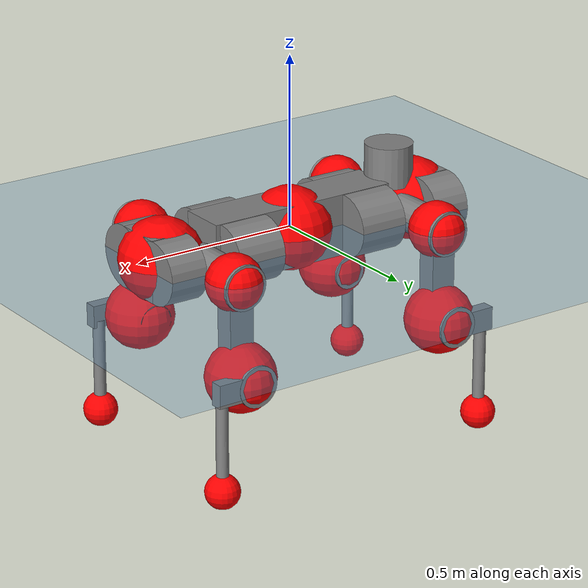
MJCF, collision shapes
<mujoco model="anymal_c">
  <compiler angle="radian" assetdir="assets" balanceinertia="true" inertiafromgeom="false"/>

  <option timestep="0.005" density="1.2" viscosity="2e-05"/>

  <size nkey="1"/>

  <visual>
    <quality shadowsize="8192"/>
    <map shadowclip="0.5"/>
  </visual>

  <default>
    <default class="/">
      <material specular="0" shininess="0.25"/>
      <geom contype="0" conaffinity="0" group="1" solref="-1000 -80"/>
      <site size="0.01 0.005 0.005" group="5"/>
      <general forcelimited="true" forcerange="-80 80" biastype="affine" gainprm="80" biasprm="0 -80 -2"/>
      <default class="anymal_c">
        <joint armature="0.01" damping="0.01" frictionloss="0.1"/>
        <default class="visual">
          <geom type="mesh" group="2"/>
          <default class="visual_zflip"/>
        </default>
        <default class="collision">
          <geom type="cylinder" group="3"/>
          <default class="foot">
            <geom size="0.03 0 0" type="sphere" condim="6" priority="1" friction="0.8 0.02 0.01" solimp="0.015 1 0.03"/>
          </default>
        </default>
      </default>
      <default class="reward_collision_sphere">
        <geom group="5" rgba="1 0 0 1"/>
      </default>
    </default>
  </default>

  <asset>
    <texture type="skybox" colorspace="auto" name="//unnamed_texture_0" builtin="gradient" rgb1="0.95 0.95 0.95" rgb2="0.95 0.95 0.95" width="100" height="600"/>
    <texture type="2d" colorspace="auto" name="texplane" builtin="checker" rgb1="0.345 0.575 0.748" rgb2="0.345 0.575 0.748" markrgb="1 1 1" width="512" height="512"/>
    <texture type="2d" colorspace="linear" name="base" file="base.png"/>
    <texture type="2d" colorspace="linear" name="top_shell" file="top_shell.png"/>
    <texture type="2d" colorspace="linear" name="bottom_shell" file="bottom_shell.png"/>
    <texture type="2d" colorspace="linear" name="remote" file="remote.png"/>
    <texture type="2d" colorspace="linear" name="hatch" file="hatch.png"/>
    <texture type="2d" colorspace="linear" name="handle" file="handle.png"/>
    <texture type="2d" colorspace="linear" name="face" file="face.png"/>
    <texture type="2d" colorspace="linear" name="battery" file="battery.png"/>
    <texture type="2d" colorspace="linear" name="lidar_cage" file="lidar_cage.png"/>
    <texture type="2d" colorspace="linear" name="depth_camera" file="depth_camera.png"/>
    <texture type="2d" colorspace="linear" name="wide_angle_camera" file="wide_angle_camera.png"/>
    <texture type="2d" colorspace="linear" name="lidar" file="lidar.png"/>
    <texture type="2d" colorspace="linear" name="drive" file="drive.png"/>
    <texture type="2d" colorspace="linear" name="hip_l" file="hip_l.png"/>
    <texture type="2d" colorspace="linear" name="shank_l" file="shank_l.png"/>
    <texture type="2d" colorspace="linear" name="foot" file="foot.png"/>
    <texture type="2d" colorspace="linear" name="thigh" file="thigh.png"/>
    <texture type="2d" colorspace="linear" name="shank_r" file="shank_r.png"/>
    <texture type="2d" colorspace="linear" name="hip_r" file="hip_r.png"/>
    <material name="MatPlane" class="/" texture="texplane" texuniform="true" texrepeat="2 2" specular="0.9" shininess="0.5"/>
    <material name="black_plastic" class="/" rgba="0.007 0.007 0.007 1"/>
    <material name="green" class="/" rgba="0.052 0.178 0.033 1"/>
    <material name="red" class="/" rgba="0.178 0.006 0.005 1"/>
    <material name="yellow" class="/" rgba="0.178 0.119 0.006 1"/>
    <material name="lwl" class="/" rgba="0.8 0.8 0.8 1"/>
    <material name="base" class="/" texture="base"/>
    <material name="top_shell" class="/" texture="top_shell"/>
    <material name="bottom_shell" class="/" texture="bottom_shell"/>
    <material name="hip_l" class="/" texture="hip_l"/>
    <material name="thigh" class="/" texture="thigh"/>
    <material name="shank_l" class="/" texture="shank_l"/>
    <material name="foot" class="/" texture="foot"/>
    <material name="hip_r" class="/" texture="hip_r"/>
    <material name="shank" class="/" texture="shank_r"/>
    <material name="hatch" class="/" texture="hatch"/>
    <material name="remote" class="/" texture="remote"/>
    <material name="handle" class="/" texture="handle"/>
    <material name="face" class="/" texture="face"/>
    <material name="depth_camera" class="/" texture="depth_camera"/>
    <material name="wide_angle_camera" class="/" texture="wide_angle_camera"/>
    <material name="battery" class="/" texture="battery"/>
    <material name="lidar_cage" class="/" texture="lidar_cage"/>
    <material name="lidar" class="/" texture="lidar"/>
    <material name="drive" class="/" texture="drive"/>
    <mesh name="base_0" class="/" file="base_0.obj"/>
    <mesh name="base_1" class="/" file="base_1.obj"/>
    <mesh name="base_2" class="/" file="base_2.obj"/>
    <mesh name="base_3" class="/" file="base_3.obj"/>
    <mesh name="base_4" class="/" file="base_4.obj"/>
    <mesh name="base_5" class="/" file="base_5.obj"/>
    <mesh name="top_shell" class="/" file="top_shell.obj"/>
    <mesh name="bottom_shell" class="/" file="bottom_shell.obj"/>
    <mesh name="remote" class="/" file="remote.obj"/>
    <mesh name="handle" class="/" file="handle.obj"/>
    <mesh name="face" class="/" file="face.obj"/>
    <mesh name="wide_angle_camera" class="/" file="wide_angle_camera.obj"/>
    <mesh name="depth_camera" class="/" file="depth_camera.obj"/>
    <mesh name="battery" class="/" file="battery.obj"/>
    <mesh name="lidar_cage" class="/" file="lidar_cage.obj"/>
    <mesh name="lidar" class="/" file="lidar.obj"/>
    <mesh name="drive" class="/" file="drive.obj"/>
    <mesh name="hip_l" class="/" file="hip_l.obj"/>
    <mesh name="thigh" class="/" file="thigh.obj"/>
    <mesh name="shank_l" class="/" file="shank_l.obj"/>
    <mesh name="foot" class="/" file="foot.obj"/>
    <mesh name="hip_r" class="/" file="hip_r.obj"/>
    <mesh name="hatch" class="/" file="hatch.obj"/>
    <mesh name="shank_r" class="/" file="shank_r.obj"/>
  </asset>

  <worldbody>
    <geom name="floor" class="/" size="100 100 0.125" type="plane" group="0" material="MatPlane"/>
    <light name="toplight_shadow" class="/" pos="0 0 5" dir="0.0990148 0.0990148 -0.990148" type="directional" ambient="0.04 0.04 0.04" diffuse="0.55 0.55 0.55" specular="0.12 0.12 0.12"/>
    <light name="toplight_fill" class="/" pos="0 0 5" dir="0.0990148 0.0990148 -0.990148" type="directional" castshadow="false" ambient="0.04 0.04 0.04" diffuse="0.3 0.3 0.3" specular="0.08 0.08 0.08"/>
    <body name="trunk" childclass="anymal_c" pos="0.000845688 -0.000860597 -0.00264384" quat="1 0.000340705 -1.36719e-05 0.000227321">
      <inertial pos="0.000517497 0.00308256 0.0449881" quat="0.502435 0.505294 0.49679 0.495416" mass="20.1802" diaginertia="0.510103 1.27999 0.150045"/>
      <joint name="//unnamed_joint_0" type="free" armature="0" damping="0" frictionloss="0"/>
      <geom name="//unnamed_geom_1" class="visual" material="green" mesh="base_0"/>
      <geom name="//unnamed_geom_2" class="visual" material="yellow" mesh="base_1"/>
      <geom name="//unnamed_geom_3" class="visual" material="red" mesh="base_2"/>
      <geom name="//unnamed_geom_4" class="visual" material="black_plastic" mesh="base_3"/>
      <geom name="//unnamed_geom_5" class="visual" material="lwl" mesh="base_4"/>
      <geom name="//unnamed_geom_6" class="visual" material="base" mesh="base_5"/>
      <geom name="trunk_1" class="collision" size="0.291128 0.0702723 0.0903502" type="box"/>
      <geom name="trunk_2" class="collision" size="0.0903502 0.0727821" pos="0.20473 0.080329 0" quat="0.707107 0 0.707107 0"/>
      <geom name="trunk_3" class="collision" size="0.0903502 0.0727821" pos="-0.20473 0.080329 0" quat="0.707107 0 0.707107 0"/>
      <geom name="trunk_4" class="collision" size="0.0903502 0.0727821" pos="0.20473 -0.080329 0" quat="0.707107 0 0.707107 0"/>
      <geom name="trunk_5" class="collision" size="0.0903502 0.0727821" pos="-0.20473 -0.080329 0" quat="0.707107 0 0.707107 0"/>
      <geom name="//unnamed_geom_12" class="visual" material="top_shell" mesh="top_shell"/>
      <geom name="//unnamed_geom_13" class="visual" material="bottom_shell" mesh="bottom_shell"/>
      <geom name="//unnamed_geom_14" class="visual" material="remote" mesh="remote"/>
      <geom name="//unnamed_geom_15" class="visual" material="handle" mesh="handle"/>
      <geom name="//unnamed_geom_16" class="visual" pos="0.390163 0 0" quat="1 0 0 0" material="face" mesh="face"/>
      <geom name="trunk_6" class="collision" size="0.055214 0.0702723 0.0903502" pos="0.441933 0 0" type="box"/>
      <geom name="//unnamed_geom_18" class="collision" size="0.0903502 0.055214" pos="0.441933 0.080329 0" quat="0.707107 0 0.707107 0"/>
      <geom name="//unnamed_geom_19" class="collision" size="0.0903502 0.055214" pos="0.441933 -0.080329 0" quat="0.707107 0 0.707107 0"/>
      <geom name="//unnamed_geom_20" class="visual" pos="0.434544 0 -0.0268063" quat="0.965926 0 0.258819 0" material="depth_camera" mesh="depth_camera"/>
      <geom name="//unnamed_geom_21" class="visual" pos="0.482879 0 0.0138147" material="wide_angle_camera" mesh="wide_angle_camera"/>
      <geom name="//unnamed_geom_22" class="visual_zflip" pos="-0.390163 0 0" quat="0 0 0 1" material="face" mesh="face"/>
      <geom name="trunk_7" class="collision" size="0.055214 0.0702723 0.0903502" pos="-0.441933 0 0" quat="0 0 0 1" type="box"/>
      <geom name="//unnamed_geom_24" class="collision" size="0.0903502 0.055214" pos="-0.441933 -0.080329 0" quat="0 -0.707107 0 0.707107"/>
      <geom name="//unnamed_geom_25" class="collision" size="0.0903502 0.055214" pos="-0.441933 0.080329 0" quat="0 -0.707107 0 0.707107"/>
      <geom name="//unnamed_geom_26" class="visual" pos="-0.434544 0 -0.0268063" quat="0 -0.258819 0 0.965926" material="depth_camera" mesh="depth_camera"/>
      <geom name="//unnamed_geom_27" class="visual_zflip" pos="-0.482879 0 0.0138147" quat="0 0 0 1" material="wide_angle_camera" mesh="wide_angle_camera"/>
      <geom name="//unnamed_geom_28" class="visual" material="battery" mesh="battery"/>
      <geom name="//unnamed_geom_29" class="visual" pos="0 0.0904482 0.0269484" quat="0.683013 -0.183013 0.183013 0.683013" material="depth_camera" mesh="depth_camera"/>
      <geom name="//unnamed_geom_30" class="visual" pos="0 -0.0904482 0.0269484" quat="0.683013 0.183013 0.183013 -0.683013" material="depth_camera" mesh="depth_camera"/>
      <geom name="//unnamed_geom_31" class="visual" pos="-0.342628 0 0.0678279" quat="1 0 0 0" material="lidar_cage" mesh="lidar_cage"/>
      <geom name="trunk_8" class="collision" size="0.0702723 0.0602334" pos="-0.342628 0 0.123198"/>
      <geom name="//unnamed_geom_33" class="visual" pos="-0.342628 8.10389e-05 0.131226" quat="0.707107 0 0 -0.707107" material="lidar" mesh="lidar"/>
      <geom name="//unnamed_geom_34" class="visual" pos="0.282291 0.119266 3.8766e-09" quat="0.258819 0.965926 0 0" material="drive" mesh="drive"/>
      <geom name="//unnamed_geom_35" class="visual" pos="0.282291 -0.119266 -3.8766e-09" quat="0.258819 -0.965926 0 0" material="drive" mesh="drive"/>
      <geom name="//unnamed_geom_36" class="visual" pos="-0.282291 0.119266 -3.8766e-09" quat="0 0 0.965926 -0.258819" material="drive" mesh="drive"/>
      <geom name="//unnamed_geom_37" class="visual" pos="-0.282291 -0.119266 3.8766e-09" quat="0 0 -0.965926 -0.258819" material="drive" mesh="drive"/>
      <geom name="//unnamed_geom_38" class="visual" pos="0.109189 0 0.0673665" quat="1 0 0 0" material="hatch" mesh="hatch"/>
      <geom name="//unnamed_geom_39" class="reward_collision_sphere" size="0.120467"/>
      <geom name="//unnamed_geom_40" class="reward_collision_sphere" size="0.120467" pos="0.423578 0 0"/>
      <geom name="//unnamed_geom_41" class="reward_collision_sphere" size="0.120467" pos="-0.423578 0 0"/>
      <site name="imu" pos="0.22886 0.0105099 0.0435339" size="0.0100389"/>
      <camera name="track" pos="0 -2.29512 0" quat="0.707107 0.707107 0 0" mode="trackcom"/>
      <camera name="ego_camera" pos="0.423578 0 -0.0369132" quat="-0.5 -0.5 0.5 0.5"/>
      <body name="LF_HIP" pos="0.284069 0.119177 -3.9916e-05" quat="0.258713 0.965954 4.18666e-05 -6.47052e-05">
        <inertial pos="0.0531443 -0.0167674 -0.00816046" quat="-0.130586 0.716066 -0.115821 0.675857" mass="2.87241" diaginertia="0.00443323 0.00979214 0.00226777"/>
        <joint name="LF_HAA" pos="0 0 0" axis="0.999879 0.00388844 0.0150354" range="-0.757151 0.443501" armature="0.0101564" damping="0.00899543" frictionloss="0.1049"/>
        <geom name="//unnamed_geom_42" class="visual" pos="0 0.000228043 -3.74558e-05" quat="0.258819 -0.965926 0 0" material="hip_l" mesh="hip_l"/>
        <geom name="//unnamed_geom_43" class="visual" pos="0.056383 -0.070956 -0.0393043" quat="0.183013 -0.683013 0.683013 0.183013" material="drive" mesh="drive"/>
        <geom name="//unnamed_geom_44" class="collision" size="0.0501945 0.0702723" pos="0.056383 -0.0137246 -0.00637213" quat="-0.353553 -0.612372 0.612372 -0.353553"/>
        <body name="LF_THIGH" pos="0.0558864 -0.0815932 -0.0352206" quat="0.182064 -0.68212 0.684081 0.183296">
          <inertial pos="0.030112 -0.00341397 -0.22871" quat="0.993356 0.00641999 -0.0824244 0.0800571" mass="3.14367" diaginertia="0.0225087 0.0566763 0.00276368"/>
          <joint name="LF_HFE" pos="0 0 0" axis="0.999994 -0.00183919 -0.00294759" stiffness="0.0107938" range="-3.15607 3.18332" armature="0.00851101" damping="0.0195718" frictionloss="0.0919495"/>
          <geom name="//unnamed_geom_45" class="visual" pos="-0.00410401 -6.46696e-06 0" quat="0.707107 0 0 -0.707107" material="thigh" mesh="thigh"/>
          <geom name="//unnamed_geom_46" class="collision" size="0.0652529 0.0401556" pos="0.0376514 0 0" quat="0.5 0.5 -0.5 -0.5"/>
          <geom name="//unnamed_geom_47" class="collision" size="0.0376459 0.0301167 0.141864" pos="0.0282386 0 -0.130409" quat="0.707107 0 0 -0.707107" type="box"/>
          <geom name="//unnamed_geom_48" class="visual" pos="0.0944109 0 -0.263006" quat="1 0 0 0" material="drive" mesh="drive"/>
          <geom name="//unnamed_geom_49" class="collision" size="0.0501945 0.0702723" pos="0.0285209 0 -0.263006" quat="0.707107 0 0.707107 0"/>
          <geom name="//unnamed_geom_50" class="reward_collision_sphere" size="0.0803112" pos="0.0235321 0 0"/>
          <body name="LF_SHANK" pos="0.0960345 0.00103809 -0.266141" quat="1 -1.32886e-05 3.72957e-05 -0.000526329">
            <inertial pos="0.00667448 -0.0714451 -0.0739822" quat="0.991446 -0.127148 0.00398085 -0.02921" mass="0.605804" diaginertia="0.00743798 0.0176299 0.000728364"/>
            <joint name="LF_KFE" pos="0 0 0" axis="1 1.05953e-05 -1.0265e-05" stiffness="0.00118765" range="-3.20986 3.13348" armature="0.00910097" damping="0.0122522" frictionloss="0.113585"/>
            <geom name="//unnamed_geom_51" class="visual" pos="-0.00133823 -0.0071355 0" quat="0.707107 0 0 -0.707107" material="shank_l" mesh="shank_l"/>
            <geom name="LF_kfe_act" class="collision" size="0.0602334 0.0200778" pos="0.0188257 0 0" quat="0.5 0.5 -0.5 -0.5"/>
            <geom name="//unnamed_geom_53" class="collision" size="0.0577227 0.0338813 0.0190739" pos="0.0188257 -0.0659834 0" quat="0.5 0.5 -0.5 -0.5" type="box"/>
            <geom name="//unnamed_geom_54" class="visual" pos="0.0122841 -0.103227 -0.311888" quat="0.382683 0 0 -0.92388" material="foot" mesh="foot"/>
            <geom name="LF_calf" class="collision" size="0.0175681 0.141802" pos="0.0122838 -0.100928 -0.155944" quat="0.707107 0 0 -0.707107"/>
            <geom name="LF_foot" class="foot" size="0.0296036" pos="0.0122838 -0.100928 -0.291125" quat="0.707107 0 0 -0.707107"/>
            <geom name="//unnamed_geom_57" class="reward_collision_sphere" size="0.100389" pos="-0.0470643 0 0"/>
            <geom name="//unnamed_geom_58" class="reward_collision_sphere" size="0.0501945" pos="0.0122838 -0.100928 -0.291125"/>
            <site name="LF_foot" class="foot" pos="0.0122838 -0.100928 -0.291125" quat="0.707107 0 0 -0.707107" size="0.0100389"/>
          </body>
        </body>
      </body>
      <body name="RF_HIP" pos="0.285674 -0.121433 0.00687358" quat="0.257661 -0.966235 0.000155864 -0.000308804">
        <inertial pos="0.0518676 0.0205228 -0.00986425" quat="0.137737 0.674005 0.134089 0.713278" mass="2.69651" diaginertia="0.00425929 0.00978152 0.00225159"/>
        <joint name="RF_HAA" pos="0 0 0" axis="0.999956 -0.00934096 0.00130913" stiffness="0.0188225" range="-0.478073 0.698432" armature="0.00892282" damping="0.0133814" frictionloss="0.113597"/>
        <geom name="//unnamed_geom_59" class="visual" pos="0 -0.000228041 -3.74557e-05" quat="0.258819 0.965926 0 0" material="hip_r" mesh="hip_r"/>
        <geom name="//unnamed_geom_60" class="visual" pos="0.056383 0.070956 -0.0393043" quat="0.183013 0.683013 0.683013 -0.183013" material="drive" mesh="drive"/>
        <geom name="//unnamed_geom_61" class="collision" size="0.0501945 0.0702723" pos="0.056383 0.0137246 -0.00637213" quat="-0.353553 0.612372 0.612372 0.353553"/>
        <body name="RF_THIGH" pos="0.0541332 0.0783007 -0.0363739" quat="0.183004 0.683017 0.682991 -0.183087">
          <inertial pos="0.0310678 -0.00109829 -0.228857" quat="0.992497 0.00194368 -0.0898612 0.0828859" mass="3.20642" diaginertia="0.0220974 0.0593173 0.0027929"/>
          <joint name="RF_HFE" pos="0 0 0" axis="0.999981 0.00440228 0.00436031" range="-3.13102 3.19147" armature="0.0107992" damping="0.000795586" frictionloss="0.0941289"/>
          <geom name="//unnamed_geom_62" class="visual" pos="-0.00410401 -6.46696e-06 0" quat="0.707107 0 0 -0.707107" material="thigh" mesh="thigh"/>
          <geom name="//unnamed_geom_63" class="collision" size="0.0652529 0.0401556" pos="0.0376514 0 0" quat="0.5 0.5 0.5 0.5"/>
          <geom name="//unnamed_geom_64" class="collision" size="0.0376459 0.0301167 0.141864" pos="0.0282386 0 -0.130409" quat="0.707107 0 0 0.707107" type="box"/>
          <geom name="//unnamed_geom_65" class="visual" pos="0.0944109 0 -0.263006" quat="1 0 0 0" material="drive" mesh="drive"/>
          <geom name="//unnamed_geom_66" class="collision" size="0.0501945 0.0702723" pos="0.0285209 0 -0.263006" quat="0.707107 0 0.707107 0"/>
          <geom name="//unnamed_geom_67" class="reward_collision_sphere" size="0.0803112" pos="0.0235321 0 0"/>
          <body name="RF_SHANK" pos="0.0903934 0.000300359 -0.265468" quat="0.999999 -2.65748e-05 -0.000873895 -0.000782816">
            <inertial pos="0.00396825 0.0712393 -0.0742237" quat="0.992485 0.119874 -0.0117532 0.0215705" mass="0.570252" diaginertia="0.0069698 0.0177318 0.000705534"/>
            <joint name="RF_KFE" pos="0 0 0" axis="0.999996 -0.00168299 -0.00234618" range="-3.08022 3.18842" armature="0.00919658" damping="0.020051" frictionloss="0.0874469"/>
            <geom name="//unnamed_geom_68" class="visual" pos="-0.00133822 0.00713549 0" quat="0.707107 0 0 0.707107" material="shank" mesh="shank_r"/>
            <geom name="RF_kfe_act" class="collision" size="0.0602334 0.0200778" pos="0.0188257 0 0" quat="0.5 0.5 0.5 0.5"/>
            <geom name="//unnamed_geom_70" class="collision" size="0.0577227 0.0338813 0.0190739" pos="0.0188257 0.0659834 0" quat="0.5 0.5 0.5 0.5" type="box"/>
            <geom name="//unnamed_geom_71" class="visual" pos="0.0122834 0.103227 -0.311888" quat="0.382683 0 0 0.92388" material="foot" mesh="foot"/>
            <geom name="RF_calf" class="collision" size="0.0175681 0.141802" pos="0.0122838 0.100928 -0.155944" quat="0.707107 0 0 0.707107"/>
            <geom name="RF_foot" class="foot" size="0.0342391" pos="0.0122838 0.100928 -0.291125" quat="0.707107 0 0 0.707107"/>
            <geom name="//unnamed_geom_74" class="reward_collision_sphere" size="0.100389" pos="-0.0470643 0 0"/>
            <geom name="//unnamed_geom_75" class="reward_collision_sphere" size="0.0501945" pos="0.0122838 0.100928 -0.291125"/>
            <site name="RF_foot" class="foot" pos="0.0122838 0.100928 -0.291125" quat="0.707107 0 0 0.707107" size="0.0100389"/>
          </body>
        </body>
      </body>
      <body name="LH_HIP" pos="-0.281675 0.121741 0.0010952" quat="-3.21055e-05 0.000112777 0.966034 -0.258416">
        <inertial pos="0.0557341 0.0147476 -0.00641917" quat="0.126716 0.673547 0.126875 0.717064" mass="2.84856" diaginertia="0.00407511 0.00924031 0.00217612"/>
        <joint name="LH_HAA" pos="0 0 0" axis="0.999942 -0.0089819 -0.00594464" range="-0.510224 0.670867" armature="0.00880546" damping="0.00902971" frictionloss="0.0999848"/>
        <geom name="//unnamed_geom_76" class="visual" pos="0 -0.000228041 -3.74557e-05" quat="-0.258819 -0.965926 0 0" material="hip_r" mesh="hip_r"/>
        <geom name="//unnamed_geom_77" class="visual" pos="0.056383 0.070956 -0.0393043" quat="0.183013 0.683013 0.683013 -0.183013" material="drive" mesh="drive"/>
        <geom name="//unnamed_geom_78" class="collision" size="0.0501945 0.0702723" pos="0.056383 0.0137246 -0.00637213" quat="-0.353553 0.612372 0.612372 0.353553"/>
        <body name="LH_THIGH" pos="0.0556941 0.0806478 -0.0387986" quat="0.181955 0.682918 0.6834 -0.182977">
          <inertial pos="0.0288059 -0.00406716 -0.223927" quat="0.992777 -0.00527575 -0.0805846 0.0887246" mass="3.2045" diaginertia="0.0217442 0.0603581 0.00273275"/>
          <joint name="LH_HFE" pos="0 0 0" axis="0.999827 -0.0100043 0.0156626" range="-3.17499 3.14264" armature="0.0105331" damping="0.00748825" frictionloss="0.0920459"/>
          <geom name="//unnamed_geom_79" class="visual" pos="-0.00410401 -6.46696e-06 0" quat="0.707107 0 0 -0.707107" material="thigh" mesh="thigh"/>
          <geom name="//unnamed_geom_80" class="collision" size="0.0652529 0.0401556" pos="0.0376514 0 0" quat="0.5 0.5 -0.5 -0.5"/>
          <geom name="//unnamed_geom_81" class="collision" size="0.0376459 0.0301167 0.141864" pos="0.0282386 0 -0.130409" quat="0.707107 0 0 -0.707107" type="box"/>
          <geom name="//unnamed_geom_82" class="visual" pos="0.0944109 0 -0.263006" quat="1 0 0 0" material="drive" mesh="drive"/>
          <geom name="//unnamed_geom_83" class="collision" size="0.0501945 0.0702723" pos="0.0285209 0 -0.263006" quat="0.707107 0 0.707107 0"/>
          <geom name="//unnamed_geom_84" class="reward_collision_sphere" size="0.0803112" pos="0.0235321 0 0"/>
          <body name="LH_SHANK" pos="0.0925758 -0.00267173 -0.26177" quat="1 -0.000514649 -0.000501551 0.000563924">
            <inertial pos="0.00439177 0.0695326 -0.0753269" quat="0.992825 0.117113 -0.00156999 0.024101" mass="0.58956" diaginertia="0.00765038 0.0187689 0.000769032"/>
            <joint name="LH_KFE" pos="0 0 0" axis="0.999988 0.0041988 0.00257599" range="-3.20238 3.1265" armature="0.0082892" damping="0.00905523" frictionloss="0.0949842"/>
            <geom name="//unnamed_geom_85" class="visual" pos="-0.00133822 0.00713549 0" quat="-0.707107 0 0 -0.707107" material="shank" mesh="shank_r"/>
            <geom name="LH_kfe_act" class="collision" size="0.0602334 0.0200778" pos="0.0188257 0 0" quat="0.5 0.5 -0.5 -0.5"/>
            <geom name="//unnamed_geom_87" class="collision" size="0.0577227 0.0338813 0.0190739" pos="0.0188257 0.0659834 0" quat="0.5 0.5 -0.5 -0.5" type="box"/>
            <geom name="//unnamed_geom_88" class="visual" pos="0.0122834 0.103227 -0.311888" quat="-0.382683 0 0 -0.92388" material="foot" mesh="foot"/>
            <geom name="LH_calf" class="collision" size="0.0175681 0.141802" pos="0.0122838 0.100928 -0.155944" quat="0.707107 0 0 -0.707107"/>
            <geom name="LH_foot" class="foot" size="0.0330542" pos="0.0122838 0.100928 -0.291125" quat="0.707107 0 0 -0.707107"/>
            <geom name="//unnamed_geom_91" class="reward_collision_sphere" size="0.100389" pos="-0.0470643 0 0"/>
            <geom name="//unnamed_geom_92" class="reward_collision_sphere" size="0.0501945" pos="0.0122838 0.100928 -0.291125"/>
            <site name="LH_foot" class="foot" pos="0.0122838 0.100928 -0.291125" quat="0.707107 0 0 -0.707107" size="0.0100389"/>
          </body>
        </body>
      </body>
      <body name="RH_HIP" pos="-0.279102 -0.119418 0.000349181" quat="0.000145215 8.05503e-05 -0.965427 -0.260673">
        <inertial pos="0.0535067 -0.0202594 -0.00977242" quat="-0.127754 0.712407 -0.137222 0.676259" mass="2.72874" diaginertia="0.00422537 0.00985569 0.00203749"/>
        <joint name="RH_HAA" pos="0 0 0" axis="0.999984 0.00511524 0.00227857" range="-0.772071 0.50584" armature="0.00897212" damping="0.00369058" frictionloss="0.106952"/>
        <geom name="//unnamed_geom_93" class="visual" pos="0 0.000228043 -3.74558e-05" quat="-0.258819 0.965926 0 0" material="hip_l" mesh="hip_l"/>
        <geom name="//unnamed_geom_94" class="visual" pos="0.056383 -0.070956 -0.0393043" quat="-0.183013 0.683013 -0.683013 -0.183013" material="drive" mesh="drive"/>
        <geom name="//unnamed_geom_95" class="collision" size="0.0501945 0.0702723" pos="0.056383 -0.0137246 -0.00637213" quat="0.353553 0.612372 -0.612372 0.353553"/>
        <body name="RH_THIGH" pos="0.0555568 -0.0836135 -0.0403982" quat="-0.184174 0.683092 -0.682616 -0.183031">
          <inertial pos="0.0283051 -9.03193e-05 -0.226942" quat="0.992534 -0.0023533 -0.0893225 0.0830244" mass="3.30826" diaginertia="0.0226941 0.0593228 0.00285232"/>
          <joint name="RH_HFE" pos="0 0 0" axis="0.999974 0.0069017 -0.00204108" range="-3.13408 3.06776" armature="0.0116232" damping="0.00506616" frictionloss="0.0979372"/>
          <geom name="//unnamed_geom_96" class="visual" pos="-0.00410401 -6.46696e-06 0" quat="0.707107 0 0 -0.707107" material="thigh" mesh="thigh"/>
          <geom name="//unnamed_geom_97" class="collision" size="0.0652529 0.0401556" pos="0.0376514 0 0" quat="0.5 0.5 0.5 0.5"/>
          <geom name="//unnamed_geom_98" class="collision" size="0.0376459 0.0301167 0.141864" pos="0.0282386 0 -0.130409" quat="0.707107 0 0 0.707107" type="box"/>
          <geom name="//unnamed_geom_99" class="visual" pos="0.0944109 0 -0.263006" quat="1 0 0 0" material="drive" mesh="drive"/>
          <geom name="//unnamed_geom_100" class="collision" size="0.0501945 0.0702723" pos="0.0285209 0 -0.263006" quat="0.707107 0 0.707107 0"/>
          <geom name="//unnamed_geom_101" class="reward_collision_sphere" size="0.0803112" pos="0.0235321 0 0"/>
          <body name="RH_SHANK" pos="0.0959784 -6.01085e-05 -0.261522" quat="1 0.000139927 -0.000129472 0.000282664">
            <inertial pos="0.0035818 -0.0679689 -0.0736679" quat="0.992896 -0.116252 0.000354834 -0.0253534" mass="0.603114" diaginertia="0.00777448 0.0189072 0.000741517"/>
            <joint name="RH_KFE" pos="0 0 0" axis="1 -0.000576856 0.000284158" stiffness="0.00903775" range="-3.16875 3.17785" armature="0.00955368" damping="0" frictionloss="0.109093"/>
            <geom name="//unnamed_geom_102" class="visual" pos="-0.00133823 -0.0071355 0" quat="0.707107 0 0 -0.707107" material="shank_l" mesh="shank_l"/>
            <geom name="RH_kfe_act" class="collision" size="0.0602334 0.0200778" pos="0.0188257 0 0" quat="0.5 0.5 0.5 0.5"/>
            <geom name="//unnamed_geom_104" class="collision" size="0.0577227 0.0338813 0.0190739" pos="0.0188257 -0.0659834 0" quat="0.5 0.5 0.5 0.5" type="box"/>
            <geom name="//unnamed_geom_105" class="visual" pos="0.0122841 -0.103227 -0.311888" quat="0.382683 0 0 -0.92388" material="foot" mesh="foot"/>
            <geom name="RH_calf" class="collision" size="0.0175681 0.141802" pos="0.0122838 -0.100928 -0.155944" quat="0.707107 0 0 0.707107"/>
            <geom name="RH_foot" class="foot" size="0.025562" pos="0.0122838 -0.100928 -0.291125" quat="0.707107 0 0 0.707107"/>
            <geom name="//unnamed_geom_108" class="reward_collision_sphere" size="0.100389" pos="-0.0470643 0 0"/>
            <geom name="//unnamed_geom_109" class="reward_collision_sphere" size="0.0501945" pos="0.0122838 -0.100928 -0.291125"/>
            <site name="RH_foot" class="foot" pos="0.0122838 -0.100928 -0.291125" quat="0.707107 0 0 0.707107" size="0.0100389"/>
          </body>
        </body>
      </body>
    </body>
  </worldbody>

  <contact>
    <pair class="/" geom1="floor" geom2="LF_foot" name="//unnamed_contact_0"/>
    <pair class="/" geom1="floor" geom2="RF_foot" name="//unnamed_contact_1"/>
    <pair class="/" geom1="floor" geom2="LH_foot" name="//unnamed_contact_2"/>
    <pair class="/" geom1="floor" geom2="RH_foot" name="//unnamed_contact_3"/>
  </contact>

  <actuator>
    <general name="LF_HAA" class="/" joint="LF_HAA" forcerange="-87.4693 87.4693" gainprm="81.929" biasprm="0 -81.929 -2.28929"/>
    <general name="LF_HFE" class="/" joint="LF_HFE" forcerange="-81.246 81.246" gainprm="81.929" biasprm="0 -81.929 -2.28929"/>
    <general name="LF_KFE" class="/" joint="LF_KFE" forcerange="-82.5579 82.5579" gainprm="81.929" biasprm="0 -81.929 -2.28929"/>
    <general name="RF_HAA" class="/" joint="RF_HAA" forcerange="-74.3912 74.3912" gainprm="81.929" biasprm="0 -81.929 -2.28929"/>
    <general name="RF_HFE" class="/" joint="RF_HFE" forcerange="-83.5581 83.5581" gainprm="81.929" biasprm="0 -81.929 -2.28929"/>
    <general name="RF_KFE" class="/" joint="RF_KFE" forcerange="-79.6696 79.6696" gainprm="81.929" biasprm="0 -81.929 -2.28929"/>
    <general name="LH_HAA" class="/" joint="LH_HAA" forcerange="-73.429 73.429" gainprm="81.929" biasprm="0 -81.929 -2.28929"/>
    <general name="LH_HFE" class="/" joint="LH_HFE" forcerange="-81.6559 81.6559" gainprm="81.929" biasprm="0 -81.929 -2.28929"/>
    <general name="LH_KFE" class="/" joint="LH_KFE" forcerange="-89.848 89.848" gainprm="81.929" biasprm="0 -81.929 -2.28929"/>
    <general name="RH_HAA" class="/" joint="RH_HAA" forcerange="-74.2722 74.2722" gainprm="81.929" biasprm="0 -81.929 -2.28929"/>
    <general name="RH_HFE" class="/" joint="RH_HFE" forcerange="-88.6931 88.6931" gainprm="81.929" biasprm="0 -81.929 -2.28929"/>
    <general name="RH_KFE" class="/" joint="RH_KFE" forcerange="-75.3292 75.3292" gainprm="81.929" biasprm="0 -81.929 -2.28929"/>
  </actuator>

  <sensor>
    <gyro site="imu" name="imu_angular_velocity"/>
    <velocimeter site="imu" name="imu_linear_velocity"/>
    <framelinvel objtype="site" objname="LF_foot" name="LF_foot_global_linear_velocity"/>
    <framelinvel objtype="site" objname="RF_foot" name="RF_foot_global_linear_velocity"/>
    <framelinvel objtype="site" objname="LH_foot" name="LH_foot_global_linear_velocity"/>
    <framelinvel objtype="site" objname="RH_foot" name="RH_foot_global_linear_velocity"/>
  </sensor>

  <keyframe>
    <key name="home" qpos="0 0 0.55 1 0 0 0 0 0.4 -0.8 0 -0.4 0.8 0 -0.4 0.8 0 0.4 -0.8"/>
  </keyframe>
</mujoco>
